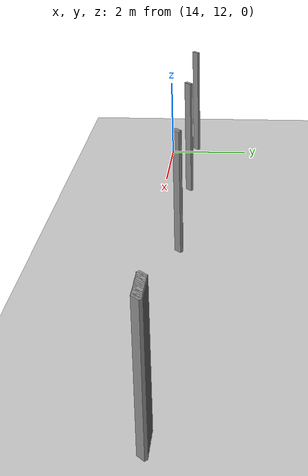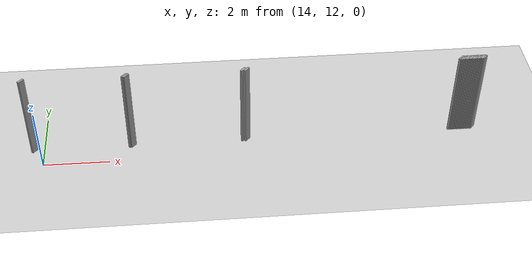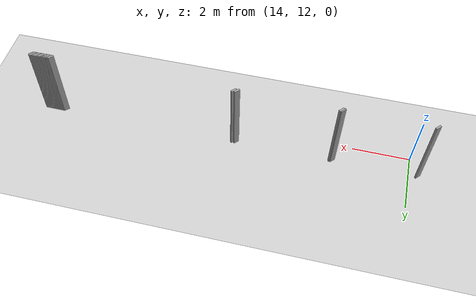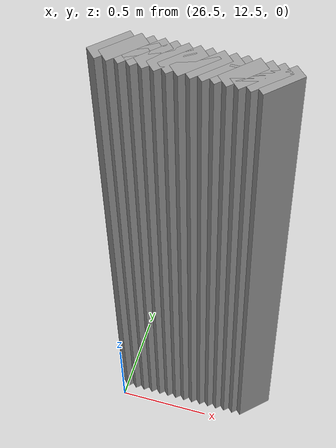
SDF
<sdf version="1.5">
 <world name="default">
  <include><uri>model://ground_plane</uri></include>
  <include><uri>model://sun</uri></include>
  <model name="grey_wall_2305">
   <static>1</static>
   <link name="link">
    <pose>13.7 12.65  1.4 0 0 -0.785398163397</pose>
    <collision name="collision"><geometry><box><size>0.0707106781187 .2  2.8</size></box></geometry></collision>
    <visual name="visual">
     <cast_shadows>0</cast_shadows>
     <geometry><box><size>0.0707106781187 .2  2.8</size></box></geometry>
     <material>
      <script>
       <uri>model://grey_wall/materials/scripts</uri>
       <uri>model://grey_wall/materials/textures</uri>
       <name>vrc/grey_wall</name>
      </script>
     </material>
    </visual>
   </link>
  </model>
  <model name="grey_wall_2306">
   <static>1</static>
   <link name="link">
    <pose>16.65 12.65  1.4 0 0 -0.785398163397</pose>
    <collision name="collision"><geometry><box><size>0.0707106781187 .2  2.8</size></box></geometry></collision>
    <visual name="visual">
     <cast_shadows>0</cast_shadows>
     <geometry><box><size>0.0707106781187 .2  2.8</size></box></geometry>
     <material>
      <script>
       <uri>model://grey_wall/materials/scripts</uri>
       <uri>model://grey_wall/materials/textures</uri>
       <name>vrc/grey_wall</name>
      </script>
     </material>
    </visual>
   </link>
  </model>
  <model name="grey_wall_2307">
   <static>1</static>
   <link name="link">
    <pose>16.7 12.65  1.4 0 0 -0.785398163397</pose>
    <collision name="collision"><geometry><box><size>0.0707106781187 .2  2.8</size></box></geometry></collision>
    <visual name="visual">
     <cast_shadows>0</cast_shadows>
     <geometry><box><size>0.0707106781187 .2  2.8</size></box></geometry>
     <material>
      <script>
       <uri>model://grey_wall/materials/scripts</uri>
       <uri>model://grey_wall/materials/textures</uri>
       <name>vrc/grey_wall</name>
      </script>
     </material>
    </visual>
   </link>
  </model>
  <model name="grey_wall_2308">
   <static>1</static>
   <link name="link">
    <pose>20.1 12.65  1.4 0 0 -0.785398163397</pose>
    <collision name="collision"><geometry><box><size>0.0707106781187 .2  2.8</size></box></geometry></collision>
    <visual name="visual">
     <cast_shadows>0</cast_shadows>
     <geometry><box><size>0.0707106781187 .2  2.8</size></box></geometry>
     <material>
      <script>
       <uri>model://grey_wall/materials/scripts</uri>
       <uri>model://grey_wall/materials/textures</uri>
       <name>vrc/grey_wall</name>
      </script>
     </material>
    </visual>
   </link>
  </model>
  <model name="grey_wall_2309">
   <static>1</static>
   <link name="link">
    <pose>20.2 12.65  1.4 0 0 -0.785398163397</pose>
    <collision name="collision"><geometry><box><size>0.0707106781187 .2  2.8</size></box></geometry></collision>
    <visual name="visual">
     <cast_shadows>0</cast_shadows>
     <geometry><box><size>0.0707106781187 .2  2.8</size></box></geometry>
     <material>
      <script>
       <uri>model://grey_wall/materials/scripts</uri>
       <uri>model://grey_wall/materials/textures</uri>
       <name>vrc/grey_wall</name>
      </script>
     </material>
    </visual>
   </link>
  </model>
  <model name="grey_wall_2310">
   <static>1</static>
   <link name="link">
    <pose>26.55 12.65  1.4 0 0 -0.785398163397</pose>
    <collision name="collision"><geometry><box><size>0.0707106781187 .2  2.8</size></box></geometry></collision>
    <visual name="visual">
     <cast_shadows>0</cast_shadows>
     <geometry><box><size>0.0707106781187 .2  2.8</size></box></geometry>
     <material>
      <script>
       <uri>model://grey_wall/materials/scripts</uri>
       <uri>model://grey_wall/materials/textures</uri>
       <name>vrc/grey_wall</name>
      </script>
     </material>
    </visual>
   </link>
  </model>
  <model name="grey_wall_2311">
   <static>1</static>
   <link name="link">
    <pose>26.6 12.65  1.4 0 0 -0.785398163397</pose>
    <collision name="collision"><geometry><box><size>0.0707106781187 .2  2.8</size></box></geometry></collision>
    <visual name="visual">
     <cast_shadows>0</cast_shadows>
     <geometry><box><size>0.0707106781187 .2  2.8</size></box></geometry>
     <material>
      <script>
       <uri>model://grey_wall/materials/scripts</uri>
       <uri>model://grey_wall/materials/textures</uri>
       <name>vrc/grey_wall</name>
      </script>
     </material>
    </visual>
   </link>
  </model>
  <model name="grey_wall_2312">
   <static>1</static>
   <link name="link">
    <pose>26.65 12.65  1.4 0 0 -0.785398163397</pose>
    <collision name="collision"><geometry><box><size>0.0707106781187 .2  2.8</size></box></geometry></collision>
    <visual name="visual">
     <cast_shadows>0</cast_shadows>
     <geometry><box><size>0.0707106781187 .2  2.8</size></box></geometry>
     <material>
      <script>
       <uri>model://grey_wall/materials/scripts</uri>
       <uri>model://grey_wall/materials/textures</uri>
       <name>vrc/grey_wall</name>
      </script>
     </material>
    </visual>
   </link>
  </model>
  <model name="grey_wall_2313">
   <static>1</static>
   <link name="link">
    <pose>26.7 12.65  1.4 0 0 -0.785398163397</pose>
    <collision name="collision"><geometry><box><size>0.0707106781187 .2  2.8</size></box></geometry></collision>
    <visual name="visual">
     <cast_shadows>0</cast_shadows>
     <geometry><box><size>0.0707106781187 .2  2.8</size></box></geometry>
     <material>
      <script>
       <uri>model://grey_wall/materials/scripts</uri>
       <uri>model://grey_wall/materials/textures</uri>
       <name>vrc/grey_wall</name>
      </script>
     </material>
    </visual>
   </link>
  </model>
  <model name="grey_wall_2314">
   <static>1</static>
   <link name="link">
    <pose>26.75 12.65  1.4 0 0 -0.785398163397</pose>
    <collision name="collision"><geometry><box><size>0.0707106781187 .2  2.8</size></box></geometry></collision>
    <visual name="visual">
     <cast_shadows>0</cast_shadows>
     <geometry><box><size>0.0707106781187 .2  2.8</size></box></geometry>
     <material>
      <script>
       <uri>model://grey_wall/materials/scripts</uri>
       <uri>model://grey_wall/materials/textures</uri>
       <name>vrc/grey_wall</name>
      </script>
     </material>
    </visual>
   </link>
  </model>
  <model name="grey_wall_2315">
   <static>1</static>
   <link name="link">
    <pose>26.8 12.65  1.4 0 0 -0.785398163397</pose>
    <collision name="collision"><geometry><box><size>0.0707106781187 .2  2.8</size></box></geometry></collision>
    <visual name="visual">
     <cast_shadows>0</cast_shadows>
     <geometry><box><size>0.0707106781187 .2  2.8</size></box></geometry>
     <material>
      <script>
       <uri>model://grey_wall/materials/scripts</uri>
       <uri>model://grey_wall/materials/textures</uri>
       <name>vrc/grey_wall</name>
      </script>
     </material>
    </visual>
   </link>
  </model>
  <model name="grey_wall_2316">
   <static>1</static>
   <link name="link">
    <pose>26.85 12.65  1.4 0 0 -0.785398163397</pose>
    <collision name="collision"><geometry><box><size>0.0707106781187 .2  2.8</size></box></geometry></collision>
    <visual name="visual">
     <cast_shadows>0</cast_shadows>
     <geometry><box><size>0.0707106781187 .2  2.8</size></box></geometry>
     <material>
      <script>
       <uri>model://grey_wall/materials/scripts</uri>
       <uri>model://grey_wall/materials/textures</uri>
       <name>vrc/grey_wall</name>
      </script>
     </material>
    </visual>
   </link>
  </model>
  <model name="grey_wall_2317">
   <static>1</static>
   <link name="link">
    <pose>26.9 12.65  1.4 0 0 -0.785398163397</pose>
    <collision name="collision"><geometry><box><size>0.0707106781187 .2  2.8</size></box></geometry></collision>
    <visual name="visual">
     <cast_shadows>0</cast_shadows>
     <geometry><box><size>0.0707106781187 .2  2.8</size></box></geometry>
     <material>
      <script>
       <uri>model://grey_wall/materials/scripts</uri>
       <uri>model://grey_wall/materials/textures</uri>
       <name>vrc/grey_wall</name>
      </script>
     </material>
    </visual>
   </link>
  </model>
  <model name="grey_wall_2318">
   <static>1</static>
   <link name="link">
    <pose>26.95 12.65  1.4 0 0 -0.785398163397</pose>
    <collision name="collision"><geometry><box><size>0.0707106781187 .2  2.8</size></box></geometry></collision>
    <visual name="visual">
     <cast_shadows>0</cast_shadows>
     <geometry><box><size>0.0707106781187 .2  2.8</size></box></geometry>
     <material>
      <script>
       <uri>model://grey_wall/materials/scripts</uri>
       <uri>model://grey_wall/materials/textures</uri>
       <name>vrc/grey_wall</name>
      </script>
     </material>
    </visual>
   </link>
  </model>
  <model name="grey_wall_2319">
   <static>1</static>
   <link name="link">
    <pose>27.0 12.65  1.4 0 0 -0.785398163397</pose>
    <collision name="collision"><geometry><box><size>0.0707106781187 .2  2.8</size></box></geometry></collision>
    <visual name="visual">
     <cast_shadows>0</cast_shadows>
     <geometry><box><size>0.0707106781187 .2  2.8</size></box></geometry>
     <material>
      <script>
       <uri>model://grey_wall/materials/scripts</uri>
       <uri>model://grey_wall/materials/textures</uri>
       <name>vrc/grey_wall</name>
      </script>
     </material>
    </visual>
   </link>
  </model>
  <model name="grey_wall_2320">
   <static>1</static>
   <link name="link">
    <pose>27.05 12.65  1.4 0 0 -0.785398163397</pose>
    <collision name="collision"><geometry><box><size>0.0707106781187 .2  2.8</size></box></geometry></collision>
    <visual name="visual">
     <cast_shadows>0</cast_shadows>
     <geometry><box><size>0.0707106781187 .2  2.8</size></box></geometry>
     <material>
      <script>
       <uri>model://grey_wall/materials/scripts</uri>
       <uri>model://grey_wall/materials/textures</uri>
       <name>vrc/grey_wall</name>
      </script>
     </material>
    </visual>
   </link>
  </model>
  <model name="grey_wall_2321">
   <static>1</static>
   <link name="link">
    <pose>27.1 12.65  1.4 0 0 -0.785398163397</pose>
    <collision name="collision"><geometry><box><size>0.0707106781187 .2  2.8</size></box></geometry></collision>
    <visual name="visual">
     <cast_shadows>0</cast_shadows>
     <geometry><box><size>0.0707106781187 .2  2.8</size></box></geometry>
     <material>
      <script>
       <uri>model://grey_wall/materials/scripts</uri>
       <uri>model://grey_wall/materials/textures</uri>
       <name>vrc/grey_wall</name>
      </script>
     </material>
    </visual>
   </link>
  </model>
  <model name="grey_wall_2322">
   <static>1</static>
   <link name="link">
    <pose>27.15 12.65  1.4 0 0 -0.785398163397</pose>
    <collision name="collision"><geometry><box><size>0.0707106781187 .2  2.8</size></box></geometry></collision>
    <visual name="visual">
     <cast_shadows>0</cast_shadows>
     <geometry><box><size>0.0707106781187 .2  2.8</size></box></geometry>
     <material>
      <script>
       <uri>model://grey_wall/materials/scripts</uri>
       <uri>model://grey_wall/materials/textures</uri>
       <name>vrc/grey_wall</name>
      </script>
     </material>
    </visual>
   </link>
  </model>
  <model name="grey_wall_2323">
   <static>1</static>
   <link name="link">
    <pose>27.2 12.65  1.4 0 0 -0.785398163397</pose>
    <collision name="collision"><geometry><box><size>0.0707106781187 .2  2.8</size></box></geometry></collision>
    <visual name="visual">
     <cast_shadows>0</cast_shadows>
     <geometry><box><size>0.0707106781187 .2  2.8</size></box></geometry>
     <material>
      <script>
       <uri>model://grey_wall/materials/scripts</uri>
       <uri>model://grey_wall/materials/textures</uri>
       <name>vrc/grey_wall</name>
      </script>
     </material>
    </visual>
   </link>
  </model>
  <model name="grey_wall_2324">
   <static>1</static>
   <link name="link">
    <pose>27.25 12.65  1.4 0 0 -0.785398163397</pose>
    <collision name="collision"><geometry><box><size>0.0707106781187 .2  2.8</size></box></geometry></collision>
    <visual name="visual">
     <cast_shadows>0</cast_shadows>
     <geometry><box><size>0.0707106781187 .2  2.8</size></box></geometry>
     <material>
      <script>
       <uri>model://grey_wall/materials/scripts</uri>
       <uri>model://grey_wall/materials/textures</uri>
       <name>vrc/grey_wall</name>
      </script>
     </material>
    </visual>
   </link>
  </model>
 </world>
</sdf>
